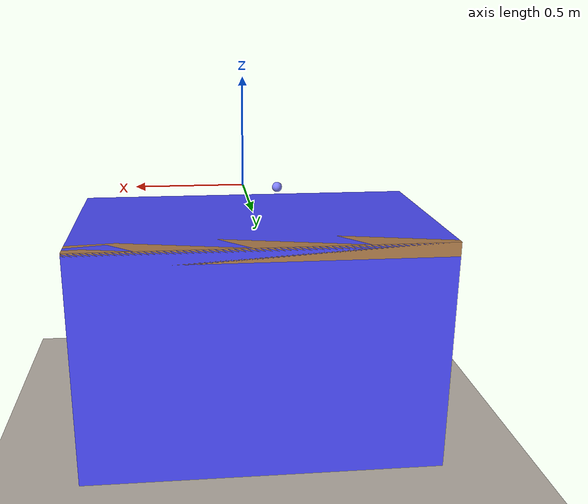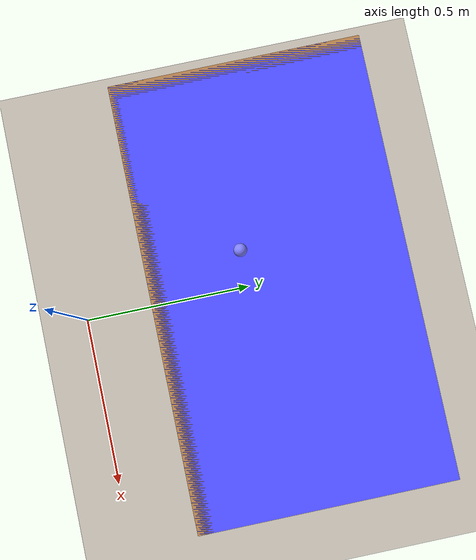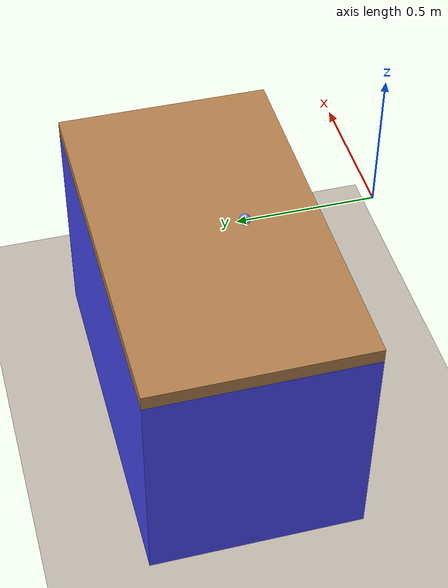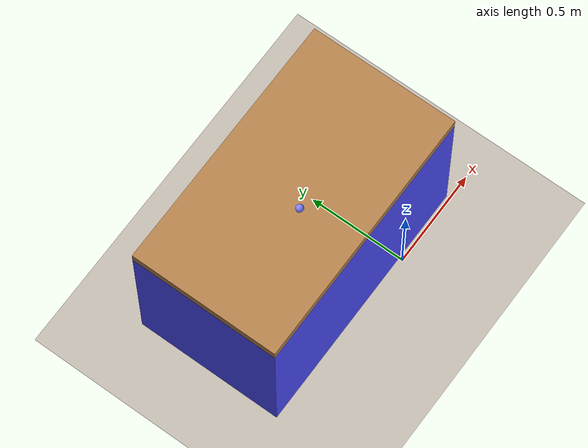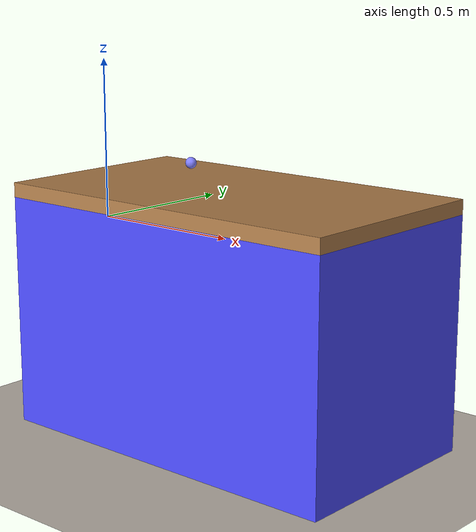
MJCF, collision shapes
<mujoco model="multitask_no_walls_arena">
  <option timestep='0.0025' iterations="50" tolerance="1e-10" solver="Newton" jacobian="dense" cone="elliptic"/>
  <asset>
      <!-- night sky -->
      <texture type="skybox" builtin="gradient" rgb1=".50 .495 .48" rgb2=".50 .495 .48" width="32" height="32"/>
      <texture name="T_table" type="cube" file="../textures/wood2.png"/>
      <texture name="T_floor" type="2d" file="../textures/floor2.png"/>

      <material name="basic_floor" texture="T_floor" texrepeat="12 12" shininess=".3" specular="0.5"
                reflectance="0.2"/>
      <material name="table_wood" texture="T_table" shininess=".3" specular="0.5"/>
      <material name="table_col" rgba="0.3 0.3 1.0 0.5" shininess="0" specular="0"/>

      <mesh file="meshes/table/tablebody.stl" name="tablebody" scale="1 1 1"/>
      <mesh file="meshes/table/tabletop.stl" name="tabletop" scale="1 1 1"/>

      <texture name="T_wallmetal" type="cube" file="../textures/metal.png"/>
      <material name="wall_metal" texture="T_wallmetal" shininess="1" reflectance="1" specular=".5"/>
  </asset>

  <worldbody>
    <light castshadow="false" directional='true' diffuse='.3 .3 .3' specular='0.3 0.3 0.3' pos='-1 -1 1'
            dir='1 1 -1'/>
    <light directional='true' diffuse='.3 .3 .3' specular='0.3 0.3 0.3' pos='1 -1 1' dir='-1 1 -1'/>
    <light castshadow="false" directional='true' diffuse='.3 .3 .3' specular='0.3 0.3 0.3' pos='0 1 1'
            dir='0 -1 -1'/>
    <body name="tablelink" pos="0 .6 0">
        <geom material="table_wood" group="1" type="box" size=".7 .4 .027" pos="0 0 -.027" conaffinity="0"
              contype="0"/>
        <geom material="table_wood" group="1" mesh="tablebody" pos="0 0 -0.65" type="mesh" conaffinity="0"
              contype="0"/>
        <geom material="table_col" group="4" pos="0.0 0.0 -0.46" size="0.7 0.4 0.46" type="box" conaffinity="1"
              contype="0"/>
    </body>

    <geom name="floor" size="4 4 .1" pos="0 0 -.913" conaffinity="1" contype="1" type="plane" material="basic_floor"
          condim="3"/>

    <!-- grey color -->
    <site name="placeSiteA" pos="0.1 0.45 0.1" size="0.02" rgba="0.5 0.5 0.5 0"/>
    <!-- purple color -->
    <site name="placeSiteB" pos="-0.1 0.5 0.1" size="0.02" rgba="0.5 0.5 1 1"/>
    <!-- hidden site for now -->
    <site name="placeSiteC" pos="0.1 0.45 0.1" size="0.02" rgba="1 0.5 0.5 0"/>

    <camera pos="0 0.5 1.5" name="topview" />
    <camera name="corner" mode="fixed" pos="-1.1 -0.4 0.6" xyaxes="-1 1 0 -0.2 -0.2 -1"/>
    <camera name="corner2" fovy="60" mode="fixed" pos="1.3 -0.2 1.1" euler="3.9 2.3 0.6"/>
    <camera name="corner3" fovy="45" mode="fixed" pos="0.9 0 1.5" euler="3.5 2.7 1"/>
    <!-- Camera added for Soccer-v2 (top-down camera may not always see the ball) -->
    <camera name="corner4_soccer" fovy="45" mode="fixed" pos="0.7 0.1 0.7" quat="0.3611 -0.2008 0.4426 -0.7958"/>
    <camera name="corner4_handle_press_side" fovy="45" mode="fixed" pos="0.7 0.1 0.7" quat="0.4302 -0.2400 0.4239 -0.7599"/>

    <camera name="top_cap2" mode='targetbody' target='tablelink' pos='-0.0 0.9 0.6' fovy="70"/>

    <camera name="front_cap2" fovy="50" mode='targetbody' target='tablelink' pos='-0.5 1.6 0.7'/>
    <camera name="left_cap2" fovy="42" mode='targetbody' target='tablelink' pos='0.0 1.6 0.9'/>

    <camera name="side_cap" fovy="50" mode='targetbody' target='tablelink' pos='1.0 0.6 0.9'/>

    <camera name="front_cap3" fovy="50" mode='targetbody' target='tablelink' pos='0.0 1.7 0.9'/>

    <camera name="corner4_peginsert_side_2" fovy="45" mode="fixed" pos="0.8 0.0 0.5" quat="0.4204 -0.3156 0.5106 -0.6802"/>

      <body mocap="true" name="gripper0_mocap" pos="0 0.0 0.0">
          <geom conaffinity="0" contype="0" pos="0 0 0" rgba="0.0 0.5 0.5 0" size="0.02" type="sphere"></geom>
          <site name="mocap" pos="0 0 0" rgba="0.0 0.5 0.5 0.0" size="0.02" type="sphere"></site>
      </body>

  </worldbody>

      <equality>
        <weld body1="gripper0_mocap" body2="gripper0_eef" solref="0.02 1"></weld>
        <weld name="suction" site1="placeSiteA" site2="placeSiteC" active="false"/>
    </equality>

</mujoco>
